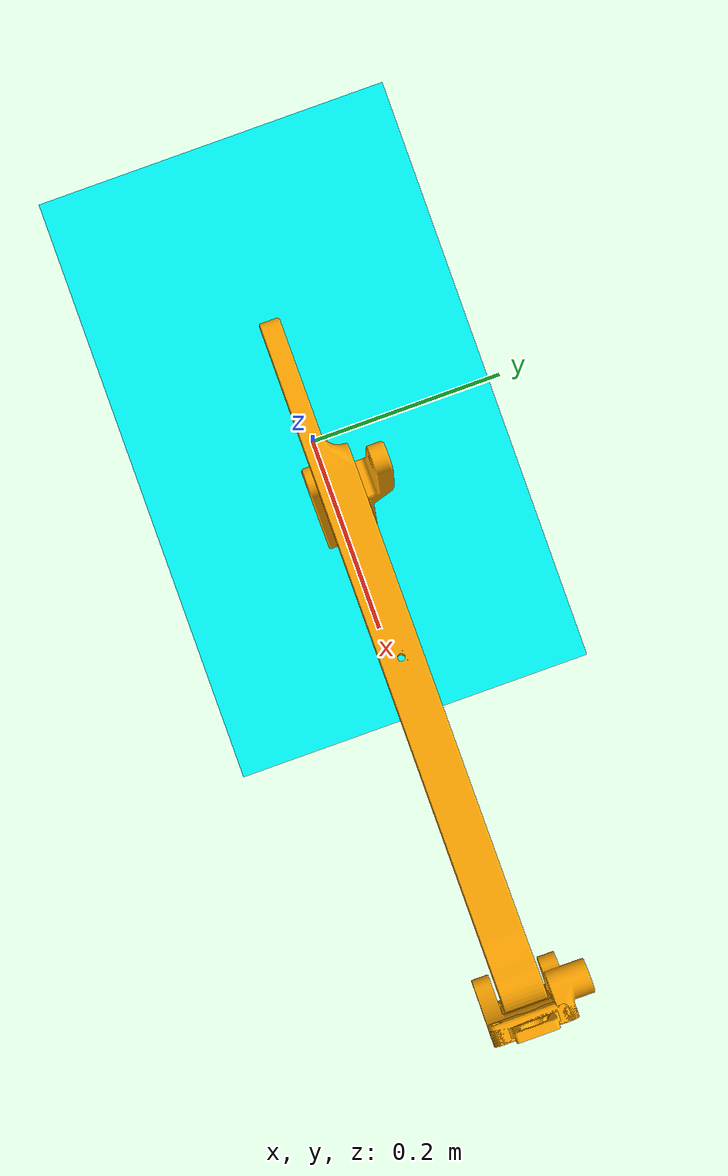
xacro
<?xml version='1.0'?>
<robot xmlns:xacro='http://www.ros.org/wiki/xacro' name='rushbott'>

    <xacro:include filename='common_properties.urdf.xacro'/>
    <xacro:include filename='wheel.urdf.xacro'/>
    <xacro:include filename='wheel_with_servo.urdf.xacro'/>
    <xacro:include filename='arm.urdf.xacro'/>
    <xacro:include filename='lidar.urdf.xacro'/>
    <xacro:include filename='ros2_control.urdf.xacro'/>

    <!-- Simulation Check-->
    <xacro:arg name='is_sim'               default='False'/>

    <!-- Body Properties -->
    <xacro:property name='body_mass'               value='2.300' />
    <xacro:property name='body_length'             value='${50*cm2m}' />
    <xacro:property name='body_width'              value='${30*cm2m}' />
    <xacro:property name='body_height'             value='${20*cm2m}' />

    <!--  Wheel Properties -->
    <xacro:property name='wheel_mass'              value='0.2' />
    <xacro:property name='wheel_radius'            value='${7.5*cm2m}' />
    <xacro:property name='wheel_width'             value='${5*cm2m}' />
    <xacro:property name='wheel_depth'             value='${wheel_radius}' />
    <xacro:property name='wheelbase'               value='${40*cm2m}' />
    <xacro:property name='track_width'             value='${38*cm2m}' />

    <!-- Servo Properties -->
    <xacro:property name='servo_mass'              value='0.2' />
    <xacro:property name='servo_radius'            value='${3*cm2m}' />
    <xacro:property name='servo_width'             value='${4*cm2m}' />
    <xacro:property name='servo_height'            value='${wheel_radius+3*cm2m}' />

    <!-- Arm Properties -->
    <xacro:property name='lower_arm_length'        value='${22.85*cm2m}'/>
    <xacro:property name='lower_arm_width'         value='${4.5*cm2m}'/>
    <xacro:property name='lower_arm_mass'          value='0.05'/>
    <xacro:property name='lower_arm_mesh'          value='package://rushbott_description/meshes/lower_arm.STL'/>

    <xacro:property name='upper_control_length'    value='${9.9*cm2m}'/>
    <xacro:property name='upper_control_width'     value='${2.5*cm2m}'/>
    <xacro:property name='upper_control_mass'      value='0.05'/>
    <xacro:property name='upper_control_mesh'      value='package://rushbott_description/meshes/upper_control.STL'/>

    <xacro:property name='upper_link_length'       value='${lower_arm_length}'/>
    <xacro:property name='upper_link_width'        value='${2.5*cm2m}'/>
    <xacro:property name='upper_link_mass'         value='0.05'/>
    <xacro:property name='upper_link_mesh'         value='package://rushbott_description/meshes/upper_link.STL'/>

    <xacro:property name='upper_arm_length'        value='${33.7*cm2m + upper_control_length}'/>
    <xacro:property name='upper_arm_width'         value='${3.5*cm2m}'/>
    <xacro:property name='upper_arm_mass'          value='0.05'/>
    <xacro:property name='upper_arm_mesh'          value='package://rushbott_description/meshes/upper_arm.STL'/>

    <xacro:property name='suction_base_length'     value='${2.5*cm2m}'/>
    <xacro:property name='suction_base_width'      value='${10*cm2m}'/>
    <xacro:property name='suction_base_mass'       value='0.05'/>
    <xacro:property name='suction_base_mesh'       value='package://rushbott_description/meshes/suction_base.STL'/>

    <xacro:property name='suction_head_length'     value='${1.2*cm2m}'/>
    <xacro:property name='suction_head_width'      value='${10*cm2m}'/>
    <xacro:property name='suction_head_mass'       value='0.05'/>
    <xacro:property name='suction_head_mesh'       value='package://rushbott_description/meshes/suction_head.STL'/>

    <xacro:property name='arm_x_position'          value='${32.3*cm2m - body_length/2}'/>
    <xacro:property name='arm_z_position'          value='${31.18*cm2m}'/>

    <!-- Base footprint -->
    <link name='base_footprint'/>

    <!-- Base link -->
    <joint name='base_footprint_to_base_link' type='fixed'>
        <parent link='base_footprint'/>
        <child link='base_link'/>
        <origin xyz='0 0 ${wheel_depth+wheel_radius}'/>
    </joint>

    <link name='base_link'>
        <visual>
            <origin xyz='0 0 ${body_height/2}'/>
            <geometry>
                <box size='${body_length} ${body_width} ${body_height}'/>
            </geometry>
            <xacro:insert_block name='material_cyan'/>
        </visual>
        <collision>
            <origin xyz='0 0 ${body_height/2}'/>
            <geometry>
                <box size='${body_length} ${body_width} ${body_height}'/>
            </geometry>
        </collision>
        <xacro:inertial_cuboid_with_pose mass='${body_mass}' x='${body_length}' y='${body_width}' z='${body_height}'>
            <origin xyz='0 0 ${body_height/2}'/>
        </xacro:inertial_cuboid_with_pose>
    </link>

    <xacro:if value="$(arg is_sim)">
        <!-- Wheels with servos -->
        <xacro:wheel_with_servo name='front_left' is_fake='True' parent_link='base_link'>
            <origin xyz='${wheelbase/2} ${track_width/2} ${-wheel_depth+servo_height}' rpy='0 0 0'/>
            <axis xyz='0 0 1'/>
        </xacro:wheel_with_servo>

        <xacro:wheel_with_servo name='front_right' is_fake='True' parent_link='base_link'>
            <origin xyz='${wheelbase/2} ${-track_width/2} ${-wheel_depth+servo_height}' rpy='0 0 ${pi}'/>
            <axis xyz='0 0 -1'/>
        </xacro:wheel_with_servo>

        <xacro:wheel_with_servo name='rear_left' is_fake='True' parent_link='base_link'>
            <origin xyz='${-wheelbase/2} ${track_width/2} ${-wheel_depth+servo_height}' rpy='0 0 0'/>
            <axis xyz='0 0 1'/>
        </xacro:wheel_with_servo>

        <xacro:wheel_with_servo name='rear_right' is_fake='True' parent_link='base_link'>
            <origin xyz='${-wheelbase/2} ${-track_width/2} ${-wheel_depth+servo_height}' rpy='0 0 ${pi}'/>
            <axis xyz='0 0 -1'/>
        </xacro:wheel_with_servo>

        <!-- Wheels -->
        <xacro:wheel name='mid_left' is_fake='True' parent_link='base_link'>
            <origin xyz='0 ${track_width/2} ${-wheel_depth}' rpy='${-pi/2} 0 0'/>
            <axis xyz='0 0 1'/>
        </xacro:wheel>

        <xacro:wheel name='mid_right' is_fake='True' parent_link='base_link'>
            <origin xyz='0 ${-track_width/2} ${-wheel_depth}' rpy='${-pi/2} 0 ${pi}'/>
            <axis xyz='0 0 -1'/>
        </xacro:wheel>
    </xacro:if>

    <!-- Arm --> 40 - 155, -30, -150
    <xacro:arm_link name='lower_arm' is_fake='False' parent_link='base_link' length='${lower_arm_length}' width='${lower_arm_width}' mass='${lower_arm_mass}' offset='0' mesh='${lower_arm_mesh}'>
        <origin xyz='${arm_x_position} 0 ${arm_z_position}' rpy='${pi/2} 0 0'/>
        <limit lower='${40 * pi / 180}' upper='${155 * pi / 180}' effort='10' velocity='10'/>
    </xacro:arm_link>

    <xacro:arm_link name='upper_arm' is_fake='False' parent_link='lower_arm' length='${upper_arm_length}' width='${upper_arm_width}' mass='${upper_arm_mass}' offset='${upper_control_length}' mesh='${upper_arm_mesh}'>
        <origin xyz='${lower_arm_length} 0 0' rpy='0 0 0'/>
        <limit lower='${-150 * pi / 180}' upper='${-30 * pi / 180}' effort='10' velocity='10'/>
    </xacro:arm_link>

    <xacro:arm_link name='suction_base' is_fake='True' parent_link='upper_arm' length='${suction_base_length}' width='${suction_base_width}' mass='${suction_base_mass}' offset='0' mesh='${suction_base_mesh}'>
        <origin xyz='${-upper_control_length+upper_arm_length} 0 0' rpy='0 0 0'/>
        <limit lower='${-2*pi}' upper='${2*pi}' effort='10' velocity='10'/>
    </xacro:arm_link>

    <xacro:end_effector name='suction_head' parent_link='suction_base' length='${suction_head_length}' width='${suction_head_width}' mass='${suction_head_mass}' mesh='${suction_head_mesh}'>
        <origin xyz='${suction_base_length} 0 0' rpy='0 0 0'/>
    </xacro:end_effector>

    <!-- Lidar -->
    <xacro:lidar parent_link="base_link">
        <origin xyz="0.122 0 ${body_height}" rpy="0 0 0"/>
    </xacro:lidar>

    <xacro:unless value="$(arg is_sim)">
        <xacro:ros2_control/>
    </xacro:unless>

        <!-- Gazebo (make this conditional later on) -->
    <xacro:if value="$(arg is_sim)">
        <gazebo>
            <plugin filename='libgz_ros2_control-system.so' name='gz_ros2_control::GazeboSimROS2ControlPlugin'>
                <parameters>$(find rushbott_control)/config/control.yaml</parameters>
            </plugin>
        </gazebo>
    </xacro:if>

</robot>

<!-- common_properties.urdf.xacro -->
<robot xmlns:xacro='http://www.ros.org/wiki/xacro'>

    <!-- Inertial blocks -->
    <xacro:macro name='inertial_cuboid_with_pose' params='mass x y z *origin'>
        <inertial>
            <mass value='${mass}' />
            <xacro:insert_block name='origin'/>
            <inertia ixx='${(1/12) * mass * (y*y + z*z)}' ixy='0.0' ixz='0.0'
            iyy='${(1/12) * mass * (x*x + z*z)}' iyz='0.0'
            izz='${(1/12) * mass * (x*x + y*y)}' />
        </inertial>
    </xacro:macro>

    <xacro:macro name='inertial_cuboid' params='mass x y z'>
        <xacro:inertial_cuboid_with_pose mass='${mass}' x='${x}' y='${y}' z='${z}'>
            <origin xyz='0 0 0' />
        </xacro:inertial_cuboid_with_pose>
    </xacro:macro>

    <xacro:macro name='inertial_cylinder_with_pose' params='mass radius length *origin'>
        <inertial>
            <xacro:insert_block name='origin'/>
            <mass value='${mass}' />
            <inertia ixx='${(1/12) * mass * (3*radius*radius + length*length)}' ixy='0.0' ixz='0.0'
            iyy='${(1/12) * mass * (3*radius*radius + length*length)}' iyz='0.0'
            izz='${(1/2) * mass * (radius*radius)}' />
        </inertial>
    </xacro:macro>

    <xacro:macro name='inertial_cylinder' params='mass radius length'>
        <xacro:inertial_cylinder_with_pose mass='${mass}' radius='${radius}' length='${length}'>
            <origin xyz='0 0 0' />
        </xacro:inertial_cylinder_with_pose>
    </xacro:macro>

    <xacro:macro name='inertial_sphere' params='mass radius'>
        <inertial>
            <mass value='${mass}' />
            <inertia ixx='${(2/5) * mass * radius * radius}' ixy='0.0' ixz='0.0'
                        iyy='${(2/5) * mass * radius * radius}' iyz='0.0'
                        izz='${(2/5) * mass * radius * radius}' />
        </inertial>
    </xacro:macro>

    <xacro:macro name='inertial_dummy'>
        <xacro:inertial_cuboid mass='0.01' x='0.01' y='0.01' z='0.01'/>
    </xacro:macro>

    <!-- Conversions -->
    <xacro:property name='cm2m'    value='${1/100.0}'/>
    <xacro:property name='mm2m'    value='${1/1000.0}'/>
    <xacro:property name='in2m'    value='0.0254'/>
    <xacro:property name='deg2rad' value='${pi/180.0}'/>

    <!-- Material colors -->
    <xacro:property name='material_black'>
        <material name='black'>
            <color rgba='0 0 0 1'/>
        </material>
    </xacro:property>

    <xacro:property name='material_red'>
        <material name='red'>
            <color rgba='1 0 0 1'/>
        </material>
    </xacro:property>

    <xacro:property name='material_cyan'>
        <material name='cyan'>
            <color rgba='0 1 1 1'/>
        </material>
    </xacro:property>

    <xacro:property name = "material_orange">
        <material name="orange">
            <color rgba="1.0 0.65 0.0 1.0"/>
        </material>
    </xacro:property>

    <xacro:property name = "material_pink">
        <material name="pink">
            <color rgba="1.0 0.75 0.8 1.0"/>
        </material>
    </xacro:property>

    <xacro:property name='material_white'>
        <material name='white'>
            <color rgba='1 1 1 1'/>
        </material>
    </xacro:property>
</robot>

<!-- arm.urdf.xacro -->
<robot xmlns:xacro='http://www.ros.org/wiki/xacro'>

    <!--Arm Link-->
    <xacro:macro name='arm_link' params='name is_fake parent_link length width offset mass mesh *origin *limit'>

        <xacro:property name='arm_joint_name' value='${name}_joint'/>

        <joint name='${arm_joint_name}' type='revolute'>
            <parent link='${parent_link}'/>
            <child link='${name}'/>
            <xacro:insert_block name='origin'/>
            <xacro:insert_block name='limit'/>
            <axis xyz='0 0 1'/>
            <dynamics damping="0.1" friction="0.2"/>
        </joint>

        <link name='${name}'>
            <visual>
                <origin xyz="0 0 0" rpy="0 ${pi/2} 0"/>
                <geometry>
                    <mesh filename='${mesh}' scale='0.001 0.001 0.001'/>
                </geometry>
                <xacro:insert_block name='material_orange'/>
            </visual>
            <collision>
                <origin xyz='${length/2 - offset} 0 0' rpy ='0 0 0'/>
                <geometry>
                    <box size='${length} ${width} ${width}'/>
                </geometry>
            </collision>
            <xacro:inertial_cuboid_with_pose mass='${mass}' x='${length}' y='${width}' z='${width}'>
                <origin xyz='${length/2 - offset} 0 0' rpy='0 0 0'/>
            </xacro:inertial_cuboid_with_pose>
        </link>

        <xacro:if value="$(arg is_sim)">
            <ros2_control name='${arm_joint_name}' type='system'>
                <hardware>
                    <plugin>gz_ros2_control/GazeboSimSystem</plugin>
                </hardware>
                <joint name='${arm_joint_name}'>
                    <command_interface name='position'/>
                    <state_interface name='position'/>
                </joint>
            </ros2_control>
        </xacro:if>

        <xacro:if value="${is_fake == True}">
            <xacro:unless value="$(arg is_sim)">
                <ros2_control name='${arm_joint_name}' type='system'>
                    <hardware>
                        <plugin>mock_components/GenericSystem</plugin>
                    </hardware>
                    <joint name='${arm_joint_name}'>
                        <command_interface name='position'/>
                        <state_interface name='position'/>
                    </joint>
                </ros2_control>
            </xacro:unless>
        </xacro:if>

    </xacro:macro>

     <!--End Effector-->
    <xacro:macro name='end_effector' params='name parent_link length width mass mesh *origin'>

        <xacro:property name='arm_joint_name' value='${name}_joint'/>

        <joint name='${arm_joint_name}' type='fixed'>
            <parent link='${parent_link}'/>
            <child link='${name}'/>
            <xacro:insert_block name='origin'/>
        </joint>

        <link name='${name}'>
            <visual>
                <origin xyz="0 0 0" rpy="0 ${-pi/2} 0"/>
                <geometry>
                    <mesh filename='${mesh}' scale='0.001 0.001 0.001'/>
                </geometry>
                <xacro:insert_block name='material_orange'/>
            </visual>
            <collision>
                <origin xyz='${length/2} 0 0' rpy ='0 0 0'/>
                <geometry>
                    <box size='${length} ${width} ${width}'/>
                </geometry>
            </collision>
            <xacro:inertial_cuboid_with_pose mass='${mass}' x='${length}' y='${width}' z='${width}'>
                <origin xyz='${length/2} 0 0' rpy='0 0 0'/>
            </xacro:inertial_cuboid_with_pose>
        </link>

    </xacro:macro>

</robot>

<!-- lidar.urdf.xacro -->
<robot xmlns:xacro="http://www.ros.org/wiki/xacro">

<xacro:macro name = "lidar" params = "parent_link *origin">

    <!--Joint Definition-->
    <joint name="lidar_joint" type="fixed">
        <parent link="${parent_link}"/>
        <child link="lidar"/>
        <xacro:insert_block name="origin"/>
    </joint>

    <!--Link Definition-->
    <link name="lidar">
        <visual>
            <origin xyz="0 0 -0.05"/>
            <geometry>
                <cylinder radius="0.05" length="0.04"/>
            </geometry>
            <xacro:insert_block name="material_black"/>
        </visual>
        <collision>
            <origin xyz="0 0 -0.05"/>
            <geometry>
                <cylinder radius="0.05" length="0.04"/>
            </geometry>
        </collision>
        <xacro:inertial_cylinder_with_pose mass="0.1" radius="0.05" length="0.04">
            <origin xyz="0 0 -0.05"/>
        </xacro:inertial_cylinder_with_pose>
    </link>

    <xacro:if value="$(arg is_sim)">
        <gazebo reference="lidar">
            <sensor name="lidar" type="gpu_lidar">
                <gz_frame_id>lidar</gz_frame_id>
                <always_on>true</always_on>
                <visualize>true</visualize>
                <update_rate>10</update_rate>
                <topic>scan</topic>
                <lidar>
                    <scan>
                        <horizontal>
                            <samples>360</samples>
                            <min_angle>-3.14</min_angle>
                            <max_angle>3.14</max_angle>
                        </horizontal>
                    </scan>
                    <range>
                        <min>0.3</min>
                        <max>12</max>
                        <resolution>0.01</resolution>
                    </range>
                </lidar>
                <plugin name="gz::sim::systems::Sensors" filename = "gz-sim-sensors-system"></plugin>
            </sensor>
        </gazebo>
    </xacro:if>

</xacro:macro>
</robot>
